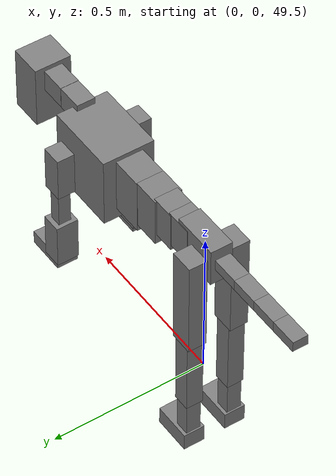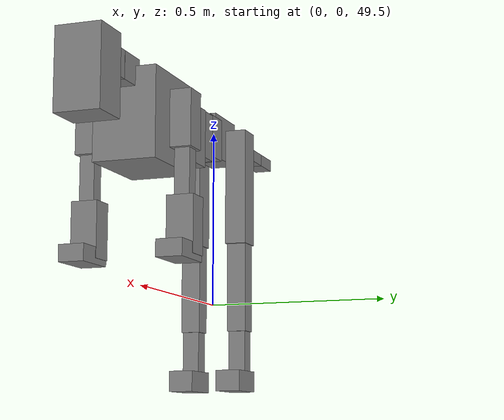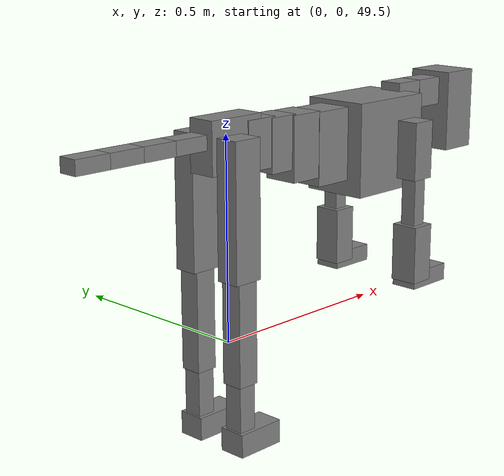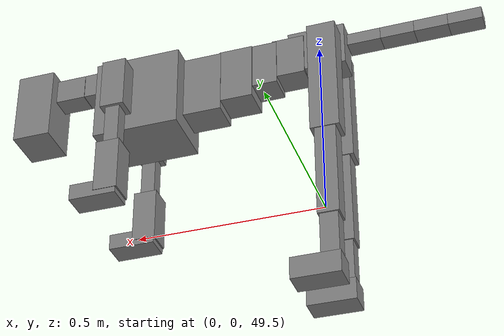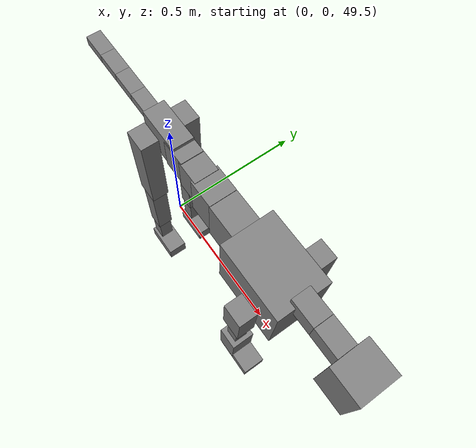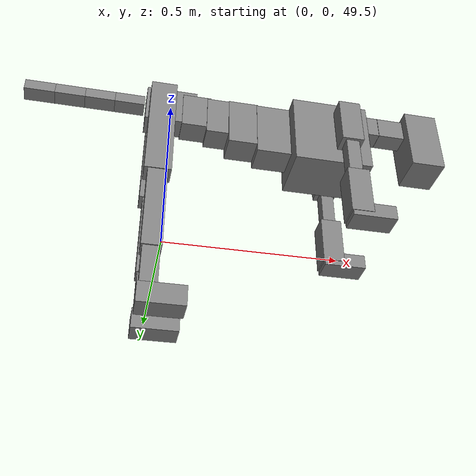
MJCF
<mujoco model="dog">

    <default>
        <joint armature="0.02" stiffness="1" damping="0.2" limited="true"/>
        <geom condim="3" friction="1 0.05 0.05" margin="0.01"/>
        <motor ctrllimited="true" ctrlrange="-1.0 1.0" forcelimited="true" gear="50"/>
    </default>

    <compiler inertiafromgeom="true" angle="radian"/>

    <option timestep="0.016" iterations="50" tolerance="1e-10" solver="Newton" jacobian="dense" cone="pyramidal"/>

    <size nconmax="20000" njmax="60000" nstack="5000000"/>
    <visual>
        <map force="0.1" zfar="30"/>
        <rgba haze="0.15 0.25 0.35 1"/>
        <quality shadowsize="2048"/>
        <global offwidth="800" offheight="800"/>
    </visual>

    <asset>
        <texture type="skybox" builtin="gradient" rgb1="0.3 0.5 0.7" rgb2="0 0 0" width="512" height="512"/>
        <texture name="texplane" type="2d" builtin="checker" rgb1=".2 .3 .4" rgb2=".1 0.15 0.2" width="512" height="512"
                 mark="cross" markrgb=".8 .8 .8"/>
        <texture name="texgeom" type="cube" builtin="flat" mark="cross" width="127" height="1278" rgb1="0.8 0.6 0.4"
                 rgb2="0.8 0.6 0.4" markrgb="1 1 1" random="0.01"/>

        <material name="matplane" reflectance="0.3" texture="texplane" texrepeat="1 1" texuniform="true"/>
        <material name="matgeom" texture="texgeom" texuniform="true" rgba="0.8 0.6 .4 1"/>
    </asset>

    <worldbody>
        <geom name="floor" pos="0 0 0" size="0 0 .25" type="plane" material="matplane" condim="3"/>

        <light directional="false" diffuse=".2 .2 .2" specular="0 0 0" pos="0 0 5" dir="0 0 -1" castshadow="false"/>
        <light mode="targetbodycom" target="torso" directional="false" diffuse=".8 .8 .8" specular="0.3 0.3 0.3"
               pos="0 0 4.0" dir="0 0 -1"/>

        <body name="root" pos="0 0 50">
            <freejoint name="root_1"/>
            <geom type="box" pos="0 0 -0.02" size="0.0774  0.0358  0.063" density="2030"/>

            <body name="spine1" pos="0.054 0 0">
                <joint name="spine1_y" axis="0 1 0" range="0 0.7" limited="true"/>
                <geom type="box" pos="0.02375 0 -0.03" size="0.04375  0.0375  0.05985" density="2030"/>

                <body name="spine2" pos="0.0612 0 0">
                    <joint name="spine2_y" axis="0 1 0" range="-0.15 0.15" limited="true"/>
                    <geom type="box" pos="0.03555  0  -0.04" size="0.04055  0.039  0.06615" density="2030"/>

                    <body name="spine3" pos="0.0730 0 0">
                        <joint name="spine3_y" axis="0 1 0" range="-0.15 0.15" limited="true"/>
                        <geom type="box" pos="0.03555  0  -0.057" size="0.04555  0.0445  0.081" density="2030"/>

                        <body name="spine4" pos="0.0780 0 0">
                            <joint name="spine4_y" axis="0 1 0" range="-0.15 0.15" limited="true"/>
                            <geom type="box" pos="0.05265  0  -0.07" size="0.05265  0.045  0.09135" density="2030"/>

                            <body name="torso" pos="0.1082 0 0">
                                <joint name="torso_y" axis="0 1 0" range="-0.15 0.15" limited="true"/>
                                <geom type="box" pos="0.11925  0  -0.085" size="0.11925  0.085  0.11745"
                                      density="2030"/>

                                <body name="neck1" pos="0.2160  0   0.0180">
                                    <joint name="neck1_y" axis="0 1 0" range="-1.2  -1" limited="true"/>
                                    <geom type="box" pos="0.0423  0  0" size="0.0423  0.03  0.036" density="2325"/>

                                    <body name="neck2" pos="0.0853  0  0">
                                        <joint name="neck2_y" axis="0 1 0" range="0.1  0" limited="true"/>
                                        <geom type="box" pos="0.0423  0  0" size="0.0423  0.03  0.036" density="2325"/>

                                        <body name="head" pos="0.0853  0  0">
                                            <joint name="head_y" axis="0 1 0" range="-0.3  -0.2" limited="true"/>
                                            <geom type="box" pos="0.0531  0  -0.055" size="0.0531  0.06  0.1044"
                                                  density="4030"/>

                                        </body>
                                    </body>
                                </body>

                                <body name="front_shoulder" pos="0.156  0   -0.0480">
                                    <joint name="front_shoulder_y" axis="0 1 0" range="-1 1.5" limited="true"/>
                                    <geom type="box" pos="0 0.13 -0.0467" size="0.0330  0.0282  0.0733" density="1158"/>
                                    <geom type="box" pos="0 -0.13 -0.0467" size="0.0330  0.0282  0.0733"
                                          density="1158"/>

                                    <body name="front_elbow" pos="0  0  -0.0933">
                                        <joint name="front_elbow_y" axis="0 1 0" range="-2 0" limited="true"/>
                                        <geom type="box" pos="0 0.13 -0.0798" size="0.0197  0.0202  0.0798"
                                              density="1081"/>
                                        <geom type="box" pos="0 -0.13 -0.0798" size="0.0197  0.0202  0.0798"
                                              density="1081"/>

                                        <body name="front_wrist" pos="0  0  -0.1596">
                                            <joint name="front_wrist_y" axis="0 1 0" range="-0.2 0" limited="true"/>
                                            <geom type="box" pos="0 0.13 -0.0602" size="0.0321  0.0357  0.0734"
                                                  density="1664"/>
                                            <geom type="box" pos="0 -0.13 -0.0602" size="0.0321  0.0357  0.0734"
                                                  density="1664"/>

                                            <body name="front_finger_end" pos="0  0  -0.1204">
                                                <joint name="front_finger_y" axis="0 1 0" range="-0.4 1"
                                                       limited="true"/>
                                                <geom type="box" pos="0.0344  0.13  -0.0070"
                                                      size="0.0631  0.0344  0.0220" density="1515"/>
                                                <geom type="box" pos="0.0344  -0.13  -0.0070"
                                                      size="0.0631  0.0344  0.0220" density="1515"/>

                                            </body>

                                        </body>
                                    </body>
                                </body>

                            </body>
                        </body>
                    </body>
                </body>
            </body>

            <body name="back_hip" pos="-0.03 0 -0.018">
                <joint name="back_hip_y" axis="0 1 0" range="-1.5 0.3" limited="true"/>
                <geom type="box" pos="0 0.07 -0.1420" size="0.0381  0.0299  0.1648" density="1154"/>
                <geom type="box" pos="0 -0.07 -0.1420" size="0.0381  0.0299  0.1648" density="1154"/>

                <body name="back_knee" pos="0  0  -0.2840">
                    <joint name="back_knee_y" axis="0 1 0" range="0 2.8" limited="true"/>
                    <geom type="box" pos="0 0.07 -0.1288" size="0.0278  0.0274  0.1443" density="1227"/>
                    <geom type="box" pos="0 -0.07 -0.1288" size="0.0278  0.0274  0.1443" density="1227"/>

                    <body name="back_ankle" pos="0  0  -0.2576">
                        <joint name="back_ankle_y" axis="0 1 0" range="-2.2 0" limited="true"/>
                        <geom type="box" pos="0 0.07 -0.0718" size="0.0237  0.0237  0.0831" density="1284"/>
                        <geom type="box" pos="0 -0.07 -0.0718" size="0.0237  0.0237  0.0831" density="1284"/>

                        <body name="back_toe_end" pos="0  0  -0.1437">
                            <joint name="back_toe_y" axis="0 1 0" range="-0.4 1" limited="true"/>
                            <geom type="box" pos="0.0345  0.07  -0.0138" size="0.0633  0.0345  0.0288" density="1515"/>
                            <geom type="box" pos="0.0345  -0.07  -0.0138" size="0.0633  0.0345  0.0288" density="1515"/>

                        </body>
                    </body>
                </body>
            </body>

            <body name="tail1" pos="-0.074 0 -0.006">
                <joint name="tail1_y" axis="0 1 0" range="-0.2 0.2" limited="true"/>
                <geom type="box" pos="-0.0536  0  0" size="0.045  0.025  0.0175" density="1587"/>

                <body name="tail2" pos="-0.09 0 0">
                    <joint name="tail2_y" axis="0 1 0" range="-0.2 0.2" limited="true"/>
                    <geom type="box" pos="-0.0536  0  0" size="0.045  0.025  0.0175" density="1587"/>

                    <body name="tail3" pos="-0.09 0 0">
                        <joint name="tail3_y" axis="0 1 0" range="-0.2 0.2" limited="true"/>
                        <geom type="box" pos="-0.0536  0  0" size="0.045  0.025  0.0175" density="1587"/>

                        <body name="tail4" pos="-0.09 0 0">
                            <joint name="tail4_y" axis="0 1 0" range="-0.2 0.2" limited="true"/>
                            <geom type="box" pos="-0.0536  0  0" size="0.045  0.025  0.0175" density="1587"/>

                        </body>
                    </body>
                </body>
            </body>
        </body>
    </worldbody>

    <actuator>
        <motor joint="spine1_y" forcerange="-150 150     "/>
        <motor joint="spine2_y" forcerange="-150 150     "/>
        <motor joint="spine3_y" forcerange="-150 150     "/>
        <motor joint="spine4_y" forcerange="-150 150     "/>
        <motor joint="torso_y" forcerange="-150 150     "/>
        <motor joint="neck1_y" forcerange="-100 100       "/>
        <motor joint="neck2_y" forcerange="-100 100       "/>
        <motor joint="head_y" forcerange="-150 150       "/>
        <motor joint="front_shoulder_y" forcerange="-178.48 109.32"/>
        <motor joint="front_elbow_y" forcerange="-133.03 113.55"/>
        <motor joint="front_wrist_y" forcerange="-139.20 146.35"/>
        <motor joint="front_finger_y" forcerange="-66.84 76.73"/>
        <motor joint="back_hip_y" forcerange="-373.31 225.19"/>
        <motor joint="back_knee_y" forcerange="-239.19 359.91"/>
        <motor joint="back_angle_y" forcerange="-198.37 80.55"/>
        <motor joint="back_toe_y" forcerange="-108.36 88.03"/>
        <motor joint="tail1_y" forcerange="-50 50     "/>
        <motor joint="tail2_y" forcerange="-50 50     "/>
        <motor joint="tail3_y" forcerange="-50 50     "/>
        <motor joint="tail4_y" forcerange="-50 50     "/>
    </actuator>
</mujoco>
